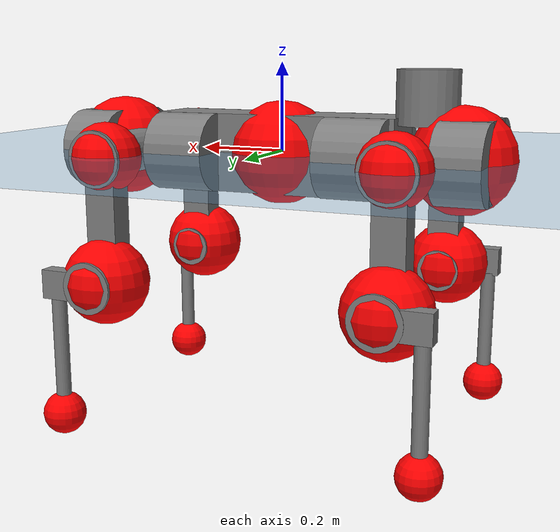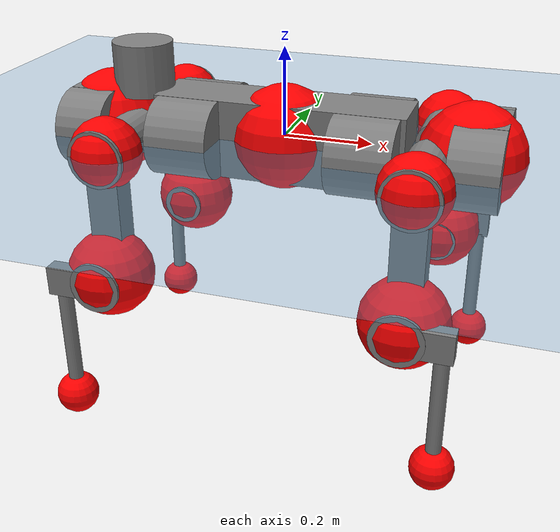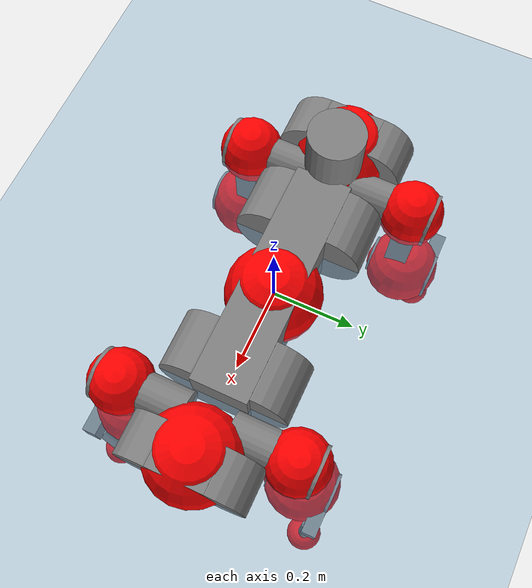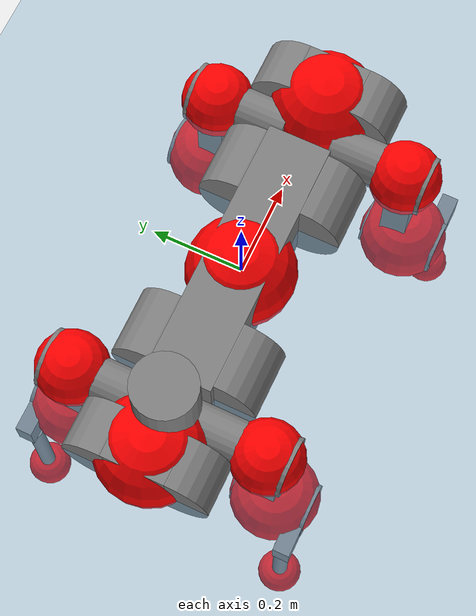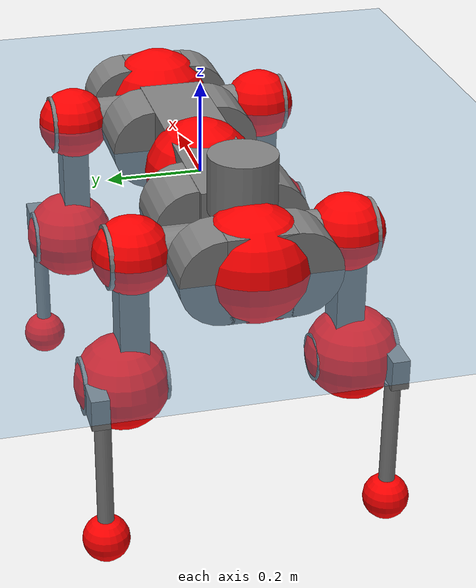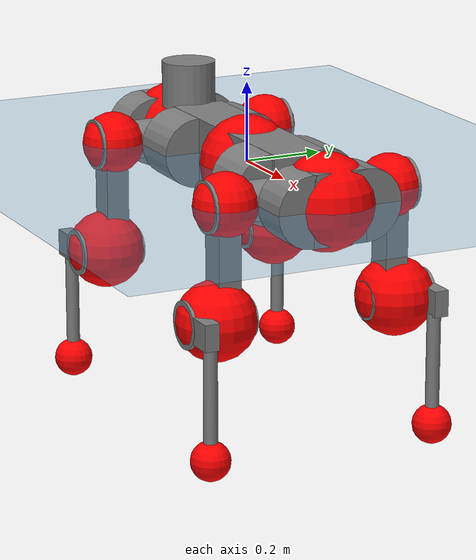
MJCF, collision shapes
<mujoco model="anymal_c">
  <compiler angle="radian" assetdir="assets" balanceinertia="true" inertiafromgeom="false"/>

  <option timestep="0.005" density="1.2" viscosity="2e-05"/>

  <size nkey="1"/>

  <visual>
    <quality shadowsize="8192"/>
    <map shadowclip="0.5"/>
  </visual>

  <default>
    <default class="/">
      <material specular="0" shininess="0.25"/>
      <geom contype="0" conaffinity="0" group="1" solref="-1000 -80"/>
      <site size="0.01 0.005 0.005" group="5"/>
      <general forcelimited="true" forcerange="-80 80" biastype="affine" gainprm="80" biasprm="0 -80 -2"/>
      <default class="anymal_c">
        <joint armature="0.01" damping="0.01" frictionloss="0.1"/>
        <default class="visual">
          <geom type="mesh" group="2"/>
          <default class="visual_zflip"/>
        </default>
        <default class="collision">
          <geom type="cylinder" group="3"/>
          <default class="foot">
            <geom size="0.03 0 0" type="sphere" condim="6" priority="1" friction="0.8 0.02 0.01" solimp="0.015 1 0.03"/>
          </default>
        </default>
      </default>
      <default class="reward_collision_sphere">
        <geom group="5" rgba="1 0 0 1"/>
      </default>
    </default>
  </default>

  <asset>
    <texture type="skybox" colorspace="auto" name="//unnamed_texture_0" builtin="gradient" rgb1="0.95 0.95 0.95" rgb2="0.95 0.95 0.95" width="100" height="600"/>
    <texture type="2d" colorspace="auto" name="texplane" builtin="checker" rgb1="0.345 0.575 0.748" rgb2="0.345 0.575 0.748" markrgb="1 1 1" width="512" height="512"/>
    <texture type="2d" colorspace="linear" name="base" file="base.png"/>
    <texture type="2d" colorspace="linear" name="top_shell" file="top_shell.png"/>
    <texture type="2d" colorspace="linear" name="bottom_shell" file="bottom_shell.png"/>
    <texture type="2d" colorspace="linear" name="remote" file="remote.png"/>
    <texture type="2d" colorspace="linear" name="hatch" file="hatch.png"/>
    <texture type="2d" colorspace="linear" name="handle" file="handle.png"/>
    <texture type="2d" colorspace="linear" name="face" file="face.png"/>
    <texture type="2d" colorspace="linear" name="battery" file="battery.png"/>
    <texture type="2d" colorspace="linear" name="lidar_cage" file="lidar_cage.png"/>
    <texture type="2d" colorspace="linear" name="depth_camera" file="depth_camera.png"/>
    <texture type="2d" colorspace="linear" name="wide_angle_camera" file="wide_angle_camera.png"/>
    <texture type="2d" colorspace="linear" name="lidar" file="lidar.png"/>
    <texture type="2d" colorspace="linear" name="drive" file="drive.png"/>
    <texture type="2d" colorspace="linear" name="hip_l" file="hip_l.png"/>
    <texture type="2d" colorspace="linear" name="shank_l" file="shank_l.png"/>
    <texture type="2d" colorspace="linear" name="foot" file="foot.png"/>
    <texture type="2d" colorspace="linear" name="thigh" file="thigh.png"/>
    <texture type="2d" colorspace="linear" name="shank_r" file="shank_r.png"/>
    <texture type="2d" colorspace="linear" name="hip_r" file="hip_r.png"/>
    <material name="MatPlane" class="/" texture="texplane" texuniform="true" texrepeat="2 2" specular="0.9" shininess="0.5"/>
    <material name="black_plastic" class="/" rgba="0.007 0.007 0.007 1"/>
    <material name="green" class="/" rgba="0.052 0.178 0.033 1"/>
    <material name="red" class="/" rgba="0.178 0.006 0.005 1"/>
    <material name="yellow" class="/" rgba="0.178 0.119 0.006 1"/>
    <material name="lwl" class="/" rgba="0.8 0.8 0.8 1"/>
    <material name="base" class="/" texture="base"/>
    <material name="top_shell" class="/" texture="top_shell"/>
    <material name="bottom_shell" class="/" texture="bottom_shell"/>
    <material name="hip_l" class="/" texture="hip_l"/>
    <material name="thigh" class="/" texture="thigh"/>
    <material name="shank_l" class="/" texture="shank_l"/>
    <material name="foot" class="/" texture="foot"/>
    <material name="hip_r" class="/" texture="hip_r"/>
    <material name="shank" class="/" texture="shank_r"/>
    <material name="hatch" class="/" texture="hatch"/>
    <material name="remote" class="/" texture="remote"/>
    <material name="handle" class="/" texture="handle"/>
    <material name="face" class="/" texture="face"/>
    <material name="depth_camera" class="/" texture="depth_camera"/>
    <material name="wide_angle_camera" class="/" texture="wide_angle_camera"/>
    <material name="battery" class="/" texture="battery"/>
    <material name="lidar_cage" class="/" texture="lidar_cage"/>
    <material name="lidar" class="/" texture="lidar"/>
    <material name="drive" class="/" texture="drive"/>
    <mesh name="base_0" class="/" file="base_0.obj"/>
    <mesh name="base_1" class="/" file="base_1.obj"/>
    <mesh name="base_2" class="/" file="base_2.obj"/>
    <mesh name="base_3" class="/" file="base_3.obj"/>
    <mesh name="base_4" class="/" file="base_4.obj"/>
    <mesh name="base_5" class="/" file="base_5.obj"/>
    <mesh name="top_shell" class="/" file="top_shell.obj"/>
    <mesh name="bottom_shell" class="/" file="bottom_shell.obj"/>
    <mesh name="remote" class="/" file="remote.obj"/>
    <mesh name="handle" class="/" file="handle.obj"/>
    <mesh name="face" class="/" file="face.obj"/>
    <mesh name="wide_angle_camera" class="/" file="wide_angle_camera.obj"/>
    <mesh name="depth_camera" class="/" file="depth_camera.obj"/>
    <mesh name="battery" class="/" file="battery.obj"/>
    <mesh name="lidar_cage" class="/" file="lidar_cage.obj"/>
    <mesh name="lidar" class="/" file="lidar.obj"/>
    <mesh name="drive" class="/" file="drive.obj"/>
    <mesh name="hip_l" class="/" file="hip_l.obj"/>
    <mesh name="thigh" class="/" file="thigh.obj"/>
    <mesh name="shank_l" class="/" file="shank_l.obj"/>
    <mesh name="foot" class="/" file="foot.obj"/>
    <mesh name="hip_r" class="/" file="hip_r.obj"/>
    <mesh name="hatch" class="/" file="hatch.obj"/>
    <mesh name="shank_r" class="/" file="shank_r.obj"/>
  </asset>

  <worldbody>
    <geom name="floor" class="/" size="100 100 0.125" type="plane" group="0" material="MatPlane"/>
    <light name="toplight_shadow" class="/" pos="0 0 5" dir="0.0990148 0.0990148 -0.990148" type="directional" ambient="0.04 0.04 0.04" diffuse="0.55 0.55 0.55" specular="0.12 0.12 0.12"/>
    <light name="toplight_fill" class="/" pos="0 0 5" dir="0.0990148 0.0990148 -0.990148" type="directional" castshadow="false" ambient="0.04 0.04 0.04" diffuse="0.3 0.3 0.3" specular="0.08 0.08 0.08"/>
    <body name="trunk" childclass="anymal_c" pos="-0.000230341 0.000116332 -0.00246225" quat="1 4.50864e-05 -0.00016399 -0.000414179">
      <inertial pos="0.00118645 0.000579899 0.0510616" quat="0.499963 0.500016 0.500039 0.499982" mass="17.6678" diaginertia="0.439622 0.703086 0.20027"/>
      <joint name="//unnamed_joint_0" type="free" armature="0" damping="0" frictionloss="0"/>
      <geom name="//unnamed_geom_1" class="visual" material="green" mesh="base_0"/>
      <geom name="//unnamed_geom_2" class="visual" material="yellow" mesh="base_1"/>
      <geom name="//unnamed_geom_3" class="visual" material="red" mesh="base_2"/>
      <geom name="//unnamed_geom_4" class="visual" material="black_plastic" mesh="base_3"/>
      <geom name="//unnamed_geom_5" class="visual" material="lwl" mesh="base_4"/>
      <geom name="//unnamed_geom_6" class="visual" material="base" mesh="base_5"/>
      <geom name="trunk_1" class="collision" size="0.285569 0.0689305 0.0886249" type="box"/>
      <geom name="trunk_2" class="collision" size="0.0886249 0.0713923" pos="0.202558 0.0723901 0" quat="0.707107 0 0.707107 0"/>
      <geom name="trunk_3" class="collision" size="0.0886249 0.0713923" pos="-0.202558 0.0723901 0" quat="0.707107 0 0.707107 0"/>
      <geom name="trunk_4" class="collision" size="0.0886249 0.0713923" pos="0.202558 -0.0723901 0" quat="0.707107 0 0.707107 0"/>
      <geom name="trunk_5" class="collision" size="0.0886249 0.0713923" pos="-0.202558 -0.0723901 0" quat="0.707107 0 0.707107 0"/>
      <geom name="//unnamed_geom_12" class="visual" material="top_shell" mesh="top_shell"/>
      <geom name="//unnamed_geom_13" class="visual" material="bottom_shell" mesh="bottom_shell"/>
      <geom name="//unnamed_geom_14" class="visual" material="remote" mesh="remote"/>
      <geom name="//unnamed_geom_15" class="visual" material="handle" mesh="handle"/>
      <geom name="//unnamed_geom_16" class="visual" pos="0.386025 0 0" quat="1 0 0 0" material="face" mesh="face"/>
      <geom name="trunk_6" class="collision" size="0.0541597 0.0689305 0.0886249" pos="0.437246 0 0" type="box"/>
      <geom name="//unnamed_geom_18" class="collision" size="0.0886249 0.0541597" pos="0.437246 0.0723901 0" quat="0.707107 0 0.707107 0"/>
      <geom name="//unnamed_geom_19" class="collision" size="0.0886249 0.0541597" pos="0.437246 -0.0723901 0" quat="0.707107 0 0.707107 0"/>
      <geom name="//unnamed_geom_20" class="visual" pos="0.429938 0 -0.0293069" quat="0.965926 0 0.258819 0" material="depth_camera" mesh="depth_camera"/>
      <geom name="//unnamed_geom_21" class="visual" pos="0.477758 0 0.0148011" material="wide_angle_camera" mesh="wide_angle_camera"/>
      <geom name="//unnamed_geom_22" class="visual_zflip" pos="-0.386025 0 0" quat="0 0 0 1" material="face" mesh="face"/>
      <geom name="trunk_7" class="collision" size="0.0541597 0.0689305 0.0886249" pos="-0.437246 0 0" quat="0 0 0 1" type="box"/>
      <geom name="//unnamed_geom_24" class="collision" size="0.0886249 0.0541597" pos="-0.437246 -0.0723901 0" quat="0 -0.707107 0 0.707107"/>
      <geom name="//unnamed_geom_25" class="collision" size="0.0886249 0.0541597" pos="-0.437246 0.0723901 0" quat="0 -0.707107 0 0.707107"/>
      <geom name="//unnamed_geom_26" class="visual" pos="-0.429938 0 -0.0293069" quat="0 -0.258819 0 0.965926" material="depth_camera" mesh="depth_camera"/>
      <geom name="//unnamed_geom_27" class="visual_zflip" pos="-0.477758 0 0.0148011" quat="0 0 0 1" material="wide_angle_camera" mesh="wide_angle_camera"/>
      <geom name="//unnamed_geom_28" class="visual" material="battery" mesh="battery"/>
      <geom name="//unnamed_geom_29" class="visual" pos="0 0.0804226 0.0282859" quat="0.683013 -0.183013 0.183013 0.683013" material="depth_camera" mesh="depth_camera"/>
      <geom name="//unnamed_geom_30" class="visual" pos="0 -0.0804226 0.0282859" quat="0.683013 0.183013 0.183013 -0.683013" material="depth_camera" mesh="depth_camera"/>
      <geom name="//unnamed_geom_31" class="visual" pos="-0.338994 0 0.0726708" quat="1 0 0 0" material="lidar_cage" mesh="lidar_cage"/>
      <geom name="trunk_8" class="collision" size="0.0689305 0.0590833" pos="-0.338994 0 0.131994"/>
      <geom name="//unnamed_geom_33" class="visual" pos="-0.338994 4.04041e-05 0.140596" quat="0.707107 0 0 -0.707107" material="lidar" mesh="lidar"/>
      <geom name="//unnamed_geom_34" class="visual" pos="0.279297 0.107535 7.83615e-10" quat="0.258819 0.965926 0 0" material="drive" mesh="drive"/>
      <geom name="//unnamed_geom_35" class="visual" pos="0.279297 -0.107535 -7.83615e-10" quat="0.258819 -0.965926 0 0" material="drive" mesh="drive"/>
      <geom name="//unnamed_geom_36" class="visual" pos="-0.279297 0.107535 -7.83615e-10" quat="0 0 0.965926 -0.258819" material="drive" mesh="drive"/>
      <geom name="//unnamed_geom_37" class="visual" pos="-0.279297 -0.107535 7.83615e-10" quat="0 0 -0.965926 -0.258819" material="drive" mesh="drive"/>
      <geom name="//unnamed_geom_38" class="visual" pos="0.108031 0 0.0721764" quat="1 0 0 0" material="hatch" mesh="hatch"/>
      <geom name="//unnamed_geom_39" class="reward_collision_sphere" size="0.118167"/>
      <geom name="//unnamed_geom_40" class="reward_collision_sphere" size="0.118167" pos="0.419086 0 0"/>
      <geom name="//unnamed_geom_41" class="reward_collision_sphere" size="0.118167" pos="-0.419086 0 0"/>
      <site name="imu" pos="0.242825 -0.0054382 0.0577257" size="0.00984721"/>
      <camera name="track" pos="0 -2.06829 0" quat="0.707107 0.707107 0 0" mode="trackcom"/>
      <camera name="ego_camera" pos="0.419086 0 -0.0395487" quat="-0.5 -0.5 0.5 0.5"/>
      <body name="LF_HIP" pos="0.280335 0.105418 -0.000785159" quat="0.259365 0.965779 -0.000624389 0.000144933">
        <inertial pos="0.0512983 -0.0148025 -0.0108826" quat="-0.127904 0.709806 -0.13527 0.679351" mass="2.54578" diaginertia="0.00401517 0.00548582 0.00314534"/>
        <joint name="LF_HAA" pos="0 0 0" axis="1 -0.000669092 0.000435179" range="-0.771411 0.494558" armature="0.0112913" damping="0.0238008" frictionloss="0.0898464"/>
        <geom name="//unnamed_geom_42" class="visual" pos="0 4.60965e-05 -7.57132e-06" quat="0.258819 -0.965926 0 0" material="hip_l" mesh="hip_l"/>
        <geom name="//unnamed_geom_43" class="visual" pos="0.055785 -0.0689333 -0.0394627" quat="0.183013 -0.683013 0.683013 0.183013" material="drive" mesh="drive"/>
        <geom name="//unnamed_geom_44" class="collision" size="0.0492361 0.0689305" pos="0.055785 -0.0123682 -0.0068271" quat="-0.353553 -0.612372 0.612372 -0.353553"/>
        <body name="LF_THIGH" pos="0.0562425 -0.0761826 -0.0393003" quat="0.18291 -0.682934 0.683048 0.183279">
          <inertial pos="0.0296281 -0.000136872 -0.245667" quat="0.99361 -0.00397138 -0.0800829 0.0794359" mass="2.93469" diaginertia="0.0210464 0.0357168 0.0038894"/>
          <joint name="LF_HFE" pos="0 0 0" axis="0.999929 -0.00970489 0.00696241" range="-3.19549 3.19142" armature="0.010548" damping="0.0106829" frictionloss="0.0953245"/>
          <geom name="//unnamed_geom_45" class="visual" pos="-0.00204617 -3.22428e-06 0" quat="0.707107 0 0 -0.707107" material="thigh" mesh="thigh"/>
          <geom name="//unnamed_geom_46" class="collision" size="0.0640069 0.0393889" pos="0.0372521 0 0" quat="0.5 0.5 -0.5 -0.5"/>
          <geom name="//unnamed_geom_47" class="collision" size="0.036927 0.0295416 0.139155" pos="0.0279391 0 -0.13972" quat="0.707107 0 0 -0.707107" type="box"/>
          <geom name="//unnamed_geom_48" class="visual" pos="0.0934096 0 -0.281785" quat="1 0 0 0" material="drive" mesh="drive"/>
          <geom name="//unnamed_geom_49" class="collision" size="0.0492361 0.0689305" pos="0.0282184 0 -0.281785" quat="0.707107 0 0.707107 0"/>
          <geom name="//unnamed_geom_50" class="reward_collision_sphere" size="0.0787777" pos="0.0232825 0 0"/>
          <body name="LF_SHANK" pos="0.0913617 0.00236897 -0.27959" quat="1 -4.48879e-05 -0.000332352 0.000282783">
            <inertial pos="0.00599973 -0.0631657 -0.0802706" quat="0.993041 -0.115218 -0.000922364 -0.0243685" mass="0.529694" diaginertia="0.00710531 0.0109752 0.0010149"/>
            <joint name="LF_KFE" pos="0 0 0" axis="0.999991 -0.00238749 0.00361255" range="-3.14592 3.13077" armature="0.00864739" damping="0.0179211" frictionloss="0.0863812"/>
            <geom name="//unnamed_geom_51" class="visual" pos="-0.00066721 -0.0035576 0" quat="0.707107 0 0 -0.707107" material="shank_l" mesh="shank_l"/>
            <geom name="LF_kfe_act" class="collision" size="0.0590833 0.0196944" pos="0.018626 0 0" quat="0.5 0.5 -0.5 -0.5"/>
            <geom name="//unnamed_geom_53" class="collision" size="0.0566205 0.0332343 0.0187097" pos="0.018626 -0.0594623 0" quat="0.5 0.5 -0.5 -0.5" type="box"/>
            <geom name="//unnamed_geom_54" class="visual" pos="0.0121536 -0.0920995 -0.334157" quat="0.382683 0 0 -0.92388" material="foot" mesh="foot"/>
            <geom name="LF_calf" class="collision" size="0.0172326 0.139094" pos="0.0121535 -0.090953 -0.167078" quat="0.707107 0 0 -0.707107"/>
            <geom name="LF_foot" class="foot" size="0.0310665" pos="0.0121535 -0.090953 -0.311911" quat="0.707107 0 0 -0.707107"/>
            <geom name="//unnamed_geom_57" class="reward_collision_sphere" size="0.0984721" pos="-0.0465651 0 0"/>
            <geom name="//unnamed_geom_58" class="reward_collision_sphere" size="0.0492361" pos="0.0121535 -0.090953 -0.311911"/>
            <site name="LF_foot" class="foot" pos="0.0121535 -0.090953 -0.311911" quat="0.707107 0 0 -0.707107" size="0.00984721"/>
          </body>
        </body>
      </body>
      <body name="RF_HIP" pos="0.282115 -0.110483 0.000626038" quat="0.258175 -0.966098 0.000530851 -0.000483759">
        <inertial pos="0.0525893 0.0164872 -0.00867441" quat="0.136163 0.679363 0.127648 0.70967" mass="2.67745" diaginertia="0.00409127 0.00553371 0.00310553"/>
        <joint name="RF_HAA" pos="0 0 0" axis="0.999997 0.000979765 -0.00224663" stiffness="0.000389106" range="-0.449445 0.702322" armature="0.0101252" damping="0.0184827" frictionloss="0.0851733"/>
        <geom name="//unnamed_geom_59" class="visual" pos="0 -4.60962e-05 -7.5713e-06" quat="0.258819 0.965926 0 0" material="hip_r" mesh="hip_r"/>
        <geom name="//unnamed_geom_60" class="visual" pos="0.055785 0.0689333 -0.0394627" quat="0.183013 0.683013 0.683013 -0.183013" material="drive" mesh="drive"/>
        <geom name="//unnamed_geom_61" class="collision" size="0.0492361 0.0689305" pos="0.055785 0.0123682 -0.0068271" quat="-0.353553 0.612372 0.612372 0.353553"/>
        <body name="RF_THIGH" pos="0.0558228 0.0777359 -0.0432086" quat="0.183765 0.682692 0.683415 -0.18195">
          <inertial pos="0.02794 2.3769e-05 -0.24275" quat="0.992701 -0.00660917 -0.0803685 0.0896816" mass="2.8213" diaginertia="0.020897 0.0340839 0.00397482"/>
          <joint name="RF_HFE" pos="0 0 0" axis="0.999998 -0.0022182 1.80113e-05" stiffness="0.00646278" range="-3.14902 3.12126" armature="0.00952159" damping="0.00173517" frictionloss="0.0927601"/>
          <geom name="//unnamed_geom_62" class="visual" pos="-0.00204617 -3.22428e-06 0" quat="0.707107 0 0 -0.707107" material="thigh" mesh="thigh"/>
          <geom name="//unnamed_geom_63" class="collision" size="0.0640069 0.0393889" pos="0.0372521 0 0" quat="0.5 0.5 0.5 0.5"/>
          <geom name="//unnamed_geom_64" class="collision" size="0.036927 0.0295416 0.139155" pos="0.0279391 0 -0.13972" quat="0.707107 0 0 0.707107" type="box"/>
          <geom name="//unnamed_geom_65" class="visual" pos="0.0934096 0 -0.281785" quat="1 0 0 0" material="drive" mesh="drive"/>
          <geom name="//unnamed_geom_66" class="collision" size="0.0492361 0.0689305" pos="0.0282184 0 -0.281785" quat="0.707107 0 0.707107 0"/>
          <geom name="//unnamed_geom_67" class="reward_collision_sphere" size="0.0787777" pos="0.0232825 0 0"/>
          <body name="RF_SHANK" pos="0.0941889 0.00141126 -0.279103" quat="1 0.000109182 -0.000154314 7.50671e-05">
            <inertial pos="0.00291782 0.0622435 -0.0796062" quat="0.992566 0.117128 0.00376128 0.0328511" mass="0.569437" diaginertia="0.00740705 0.0110945 0.00107331"/>
            <joint name="RF_KFE" pos="0 0 0" axis="0.999995 0.00231724 0.00223553" range="-3.09781 3.10283" armature="0.00988327" damping="0.00915859" frictionloss="0.100433"/>
            <geom name="//unnamed_geom_68" class="visual" pos="-0.000667206 0.00355759 0" quat="0.707107 0 0 0.707107" material="shank" mesh="shank_r"/>
            <geom name="RF_kfe_act" class="collision" size="0.0590833 0.0196944" pos="0.018626 0 0" quat="0.5 0.5 0.5 0.5"/>
            <geom name="//unnamed_geom_70" class="collision" size="0.0566205 0.0332343 0.0187097" pos="0.018626 0.0594623 0" quat="0.5 0.5 0.5 0.5" type="box"/>
            <geom name="//unnamed_geom_71" class="visual" pos="0.0121533 0.0920995 -0.334157" quat="0.382683 0 0 0.92388" material="foot" mesh="foot"/>
            <geom name="RF_calf" class="collision" size="0.0172326 0.139094" pos="0.0121535 0.090953 -0.167078" quat="0.707107 0 0 0.707107"/>
            <geom name="RF_foot" class="foot" size="0.0287191" pos="0.0121535 0.090953 -0.311911" quat="0.707107 0 0 0.707107"/>
            <geom name="//unnamed_geom_74" class="reward_collision_sphere" size="0.0984721" pos="-0.0465651 0 0"/>
            <geom name="//unnamed_geom_75" class="reward_collision_sphere" size="0.0492361" pos="0.0121535 0.090953 -0.311911"/>
            <site name="RF_foot" class="foot" pos="0.0121535 0.090953 -0.311911" quat="0.707107 0 0 0.707107" size="0.00984721"/>
          </body>
        </body>
      </body>
      <body name="LH_HIP" pos="-0.27935 0.109769 -7.18124e-05" quat="7.36275e-05 7.0081e-05 0.965992 -0.258571">
        <inertial pos="0.0501322 0.0140625 -0.00799154" quat="0.135869 0.679358 0.123823 0.710409" mass="2.67248" diaginertia="0.00421133 0.00600595 0.0030012"/>
        <joint name="LH_HAA" pos="0 0 0" axis="0.999936 -0.00063849 -0.0113169" range="-0.473073 0.667985" armature="0.00998448" damping="0" frictionloss="0.112344"/>
        <geom name="//unnamed_geom_76" class="visual" pos="0 -4.60962e-05 -7.5713e-06" quat="-0.258819 -0.965926 0 0" material="hip_r" mesh="hip_r"/>
        <geom name="//unnamed_geom_77" class="visual" pos="0.055785 0.0689333 -0.0394627" quat="0.183013 0.683013 0.683013 -0.183013" material="drive" mesh="drive"/>
        <geom name="//unnamed_geom_78" class="collision" size="0.0492361 0.0689305" pos="0.055785 0.0123682 -0.0068271" quat="-0.353553 0.612372 0.612372 0.353553"/>
        <body name="LH_THIGH" pos="0.0548485 0.0732185 -0.0424897" quat="0.181577 0.682776 0.68355 -0.183321">
          <inertial pos="0.0266231 -0.00255276 -0.242803" quat="0.992713 -0.0145249 -0.0744131 0.0936605" mass="2.88947" diaginertia="0.0212758 0.0344491 0.00413114"/>
          <joint name="LH_HFE" pos="0 0 0" axis="0.999999 0.000266241 0.00132814" stiffness="0.0101964" range="-3.14219 3.14771" armature="0.00971" damping="0.00574317" frictionloss="0.0980115"/>
          <geom name="//unnamed_geom_79" class="visual" pos="-0.00204617 -3.22428e-06 0" quat="0.707107 0 0 -0.707107" material="thigh" mesh="thigh"/>
          <geom name="//unnamed_geom_80" class="collision" size="0.0640069 0.0393889" pos="0.0372521 0 0" quat="0.5 0.5 -0.5 -0.5"/>
          <geom name="//unnamed_geom_81" class="collision" size="0.036927 0.0295416 0.139155" pos="0.0279391 0 -0.13972" quat="0.707107 0 0 -0.707107" type="box"/>
          <geom name="//unnamed_geom_82" class="visual" pos="0.0934096 0 -0.281785" quat="1 0 0 0" material="drive" mesh="drive"/>
          <geom name="//unnamed_geom_83" class="collision" size="0.0492361 0.0689305" pos="0.0282184 0 -0.281785" quat="0.707107 0 0.707107 0"/>
          <geom name="//unnamed_geom_84" class="reward_collision_sphere" size="0.0787777" pos="0.0232825 0 0"/>
          <body name="LH_SHANK" pos="0.0953913 -0.000881748 -0.282562" quat="1 9.16984e-05 -0.000156901 0.000841203">
            <inertial pos="0.0072389 0.061017 -0.0823149" quat="0.992881 0.116452 -0.0013147 0.0249833" mass="0.546774" diaginertia="0.00687034 0.0109483 0.00103582"/>
            <joint name="LH_KFE" pos="0 0 0" axis="0.999959 0.00208842 0.00876577" stiffness="0.000620286" range="-3.15051 3.15784" armature="0.00951362" damping="0.0186508" frictionloss="0.112131"/>
            <geom name="//unnamed_geom_85" class="visual" pos="-0.000667206 0.00355759 0" quat="-0.707107 0 0 -0.707107" material="shank" mesh="shank_r"/>
            <geom name="LH_kfe_act" class="collision" size="0.0590833 0.0196944" pos="0.018626 0 0" quat="0.5 0.5 -0.5 -0.5"/>
            <geom name="//unnamed_geom_87" class="collision" size="0.0566205 0.0332343 0.0187097" pos="0.018626 0.0594623 0" quat="0.5 0.5 -0.5 -0.5" type="box"/>
            <geom name="//unnamed_geom_88" class="visual" pos="0.0121533 0.0920995 -0.334157" quat="-0.382683 0 0 -0.92388" material="foot" mesh="foot"/>
            <geom name="LH_calf" class="collision" size="0.0172326 0.139094" pos="0.0121535 0.090953 -0.167078" quat="0.707107 0 0 -0.707107"/>
            <geom name="LH_foot" class="foot" size="0.0297509" pos="0.0121535 0.090953 -0.311911" quat="0.707107 0 0 -0.707107"/>
            <geom name="//unnamed_geom_91" class="reward_collision_sphere" size="0.0984721" pos="-0.0465651 0 0"/>
            <geom name="//unnamed_geom_92" class="reward_collision_sphere" size="0.0492361" pos="0.0121535 0.090953 -0.311911"/>
            <site name="LH_foot" class="foot" pos="0.0121535 0.090953 -0.311911" quat="0.707107 0 0 -0.707107" size="0.00984721"/>
          </body>
        </body>
      </body>
      <body name="RH_HIP" pos="-0.279215 -0.105504 0.000202897" quat="-0.000656342 0.000192162 -0.966062 -0.258308">
        <inertial pos="0.0537743 -0.0131336 -0.0111163" quat="-0.129069 0.710357 -0.134212 0.678764" mass="2.51543" diaginertia="0.00410247 0.00542819 0.00300674"/>
        <joint name="RH_HAA" pos="0 0 0" axis="0.999913 0.00695951 -0.0111618" range="-0.753464 0.522019" armature="0.00910199" damping="0.00527757" frictionloss="0.111933"/>
        <geom name="//unnamed_geom_93" class="visual" pos="0 4.60965e-05 -7.57132e-06" quat="-0.258819 0.965926 0 0" material="hip_l" mesh="hip_l"/>
        <geom name="//unnamed_geom_94" class="visual" pos="0.055785 -0.0689333 -0.0394627" quat="-0.183013 0.683013 -0.683013 -0.183013" material="drive" mesh="drive"/>
        <geom name="//unnamed_geom_95" class="collision" size="0.0492361 0.0689305" pos="0.055785 -0.0123682 -0.0068271" quat="0.353553 0.612372 -0.612372 0.353553"/>
        <body name="RH_THIGH" pos="0.0557097 -0.0757739 -0.041444" quat="-0.18309 0.682924 -0.683069 -0.183056">
          <inertial pos="0.0290527 -0.000539358 -0.239954" quat="0.994016 -0.000800075 -0.0794939 0.0749096" mass="2.9326" diaginertia="0.0215976 0.035906 0.00401474"/>
          <joint name="RH_HFE" pos="0 0 0" axis="0.999915 -0.00707291 -0.0109823" stiffness="0.00777397" range="-3.08869 3.12396" armature="0.00963716" damping="0.00927037" frictionloss="0.108229"/>
          <geom name="//unnamed_geom_96" class="visual" pos="-0.00204617 -3.22428e-06 0" quat="0.707107 0 0 -0.707107" material="thigh" mesh="thigh"/>
          <geom name="//unnamed_geom_97" class="collision" size="0.0640069 0.0393889" pos="0.0372521 0 0" quat="0.5 0.5 0.5 0.5"/>
          <geom name="//unnamed_geom_98" class="collision" size="0.036927 0.0295416 0.139155" pos="0.0279391 0 -0.13972" quat="0.707107 0 0 0.707107" type="box"/>
          <geom name="//unnamed_geom_99" class="visual" pos="0.0934096 0 -0.281785" quat="1 0 0 0" material="drive" mesh="drive"/>
          <geom name="//unnamed_geom_100" class="collision" size="0.0492361 0.0689305" pos="0.0282184 0 -0.281785" quat="0.707107 0 0.707107 0"/>
          <geom name="//unnamed_geom_101" class="reward_collision_sphere" size="0.0787777" pos="0.0232825 0 0"/>
          <body name="RH_SHANK" pos="0.093227 -0.00200864 -0.279428" quat="0.999999 0.000889902 -0.000188629 0.000794236">
            <inertial pos="0.00797161 -0.0631025 -0.0802989" quat="0.99309 -0.114823 -0.000994562 -0.0242434" mass="0.53497" diaginertia="0.0069239 0.0102928 0.00101309"/>
            <joint name="RH_KFE" pos="0 0 0" axis="0.999993 0.00358118 -0.000976987" range="-3.09489 3.16294" armature="0.0102927" damping="0.00774036" frictionloss="0.0986505"/>
            <geom name="//unnamed_geom_102" class="visual" pos="-0.00066721 -0.0035576 0" quat="0.707107 0 0 -0.707107" material="shank_l" mesh="shank_l"/>
            <geom name="RH_kfe_act" class="collision" size="0.0590833 0.0196944" pos="0.018626 0 0" quat="0.5 0.5 0.5 0.5"/>
            <geom name="//unnamed_geom_104" class="collision" size="0.0566205 0.0332343 0.0187097" pos="0.018626 -0.0594623 0" quat="0.5 0.5 0.5 0.5" type="box"/>
            <geom name="//unnamed_geom_105" class="visual" pos="0.0121536 -0.0920995 -0.334157" quat="0.382683 0 0 -0.92388" material="foot" mesh="foot"/>
            <geom name="RH_calf" class="collision" size="0.0172326 0.139094" pos="0.0121535 -0.090953 -0.167078" quat="0.707107 0 0 0.707107"/>
            <geom name="RH_foot" class="foot" size="0.0300308" pos="0.0121535 -0.090953 -0.311911" quat="0.707107 0 0 0.707107"/>
            <geom name="//unnamed_geom_108" class="reward_collision_sphere" size="0.0984721" pos="-0.0465651 0 0"/>
            <geom name="//unnamed_geom_109" class="reward_collision_sphere" size="0.0492361" pos="0.0121535 -0.090953 -0.311911"/>
            <site name="RH_foot" class="foot" pos="0.0121535 -0.090953 -0.311911" quat="0.707107 0 0 0.707107" size="0.00984721"/>
          </body>
        </body>
      </body>
    </body>
  </worldbody>

  <contact>
    <pair class="/" geom1="floor" geom2="LF_foot" name="//unnamed_contact_0"/>
    <pair class="/" geom1="floor" geom2="RF_foot" name="//unnamed_contact_1"/>
    <pair class="/" geom1="floor" geom2="LH_foot" name="//unnamed_contact_2"/>
    <pair class="/" geom1="floor" geom2="RH_foot" name="//unnamed_contact_3"/>
  </contact>

  <actuator>
    <general name="LF_HAA" class="/" joint="LF_HAA" forcerange="-71.1431 71.1431" gainprm="80.9963" biasprm="0 -80.9963 -2.1036"/>
    <general name="LF_HFE" class="/" joint="LF_HFE" forcerange="-79.7177 79.7177" gainprm="80.9963" biasprm="0 -80.9963 -2.1036"/>
    <general name="LF_KFE" class="/" joint="LF_KFE" forcerange="-82.9849 82.9849" gainprm="80.9963" biasprm="0 -80.9963 -2.1036"/>
    <general name="RF_HAA" class="/" joint="RF_HAA" forcerange="-74.6984 74.6984" gainprm="80.9963" biasprm="0 -80.9963 -2.1036"/>
    <general name="RF_HFE" class="/" joint="RF_HFE" forcerange="-87.9182 87.9182" gainprm="80.9963" biasprm="0 -80.9963 -2.1036"/>
    <general name="RF_KFE" class="/" joint="RF_KFE" forcerange="-71.0222 71.0222" gainprm="80.9963" biasprm="0 -80.9963 -2.1036"/>
    <general name="LH_HAA" class="/" joint="LH_HAA" forcerange="-86.8974 86.8974" gainprm="80.9963" biasprm="0 -80.9963 -2.1036"/>
    <general name="LH_HFE" class="/" joint="LH_HFE" forcerange="-79.9125 79.9125" gainprm="80.9963" biasprm="0 -80.9963 -2.1036"/>
    <general name="LH_KFE" class="/" joint="LH_KFE" forcerange="-71.2797 71.2797" gainprm="80.9963" biasprm="0 -80.9963 -2.1036"/>
    <general name="RH_HAA" class="/" joint="RH_HAA" forcerange="-79.2696 79.2696" gainprm="80.9963" biasprm="0 -80.9963 -2.1036"/>
    <general name="RH_HFE" class="/" joint="RH_HFE" forcerange="-78.3587 78.3587" gainprm="80.9963" biasprm="0 -80.9963 -2.1036"/>
    <general name="RH_KFE" class="/" joint="RH_KFE" forcerange="-76.3279 76.3279" gainprm="80.9963" biasprm="0 -80.9963 -2.1036"/>
  </actuator>

  <sensor>
    <gyro site="imu" name="imu_angular_velocity"/>
    <velocimeter site="imu" name="imu_linear_velocity"/>
    <framelinvel objtype="site" objname="LF_foot" name="LF_foot_global_linear_velocity"/>
    <framelinvel objtype="site" objname="RF_foot" name="RF_foot_global_linear_velocity"/>
    <framelinvel objtype="site" objname="LH_foot" name="LH_foot_global_linear_velocity"/>
    <framelinvel objtype="site" objname="RH_foot" name="RH_foot_global_linear_velocity"/>
  </sensor>

  <keyframe>
    <key name="home" qpos="0 0 0.55 1 0 0 0 0 0.4 -0.8 0 -0.4 0.8 0 -0.4 0.8 0 0.4 -0.8"/>
  </keyframe>
</mujoco>
